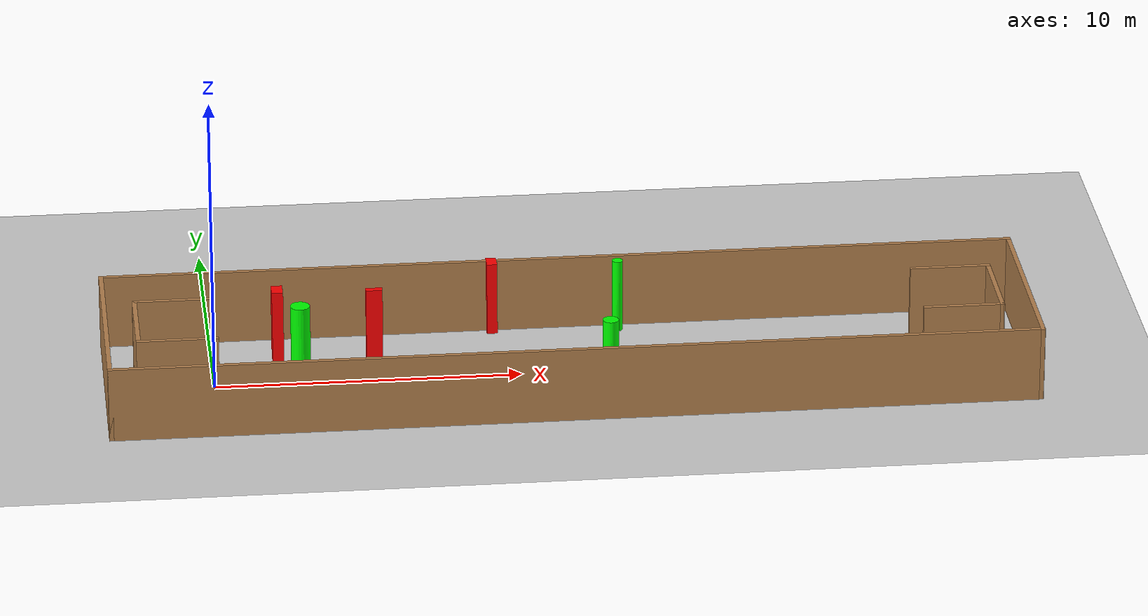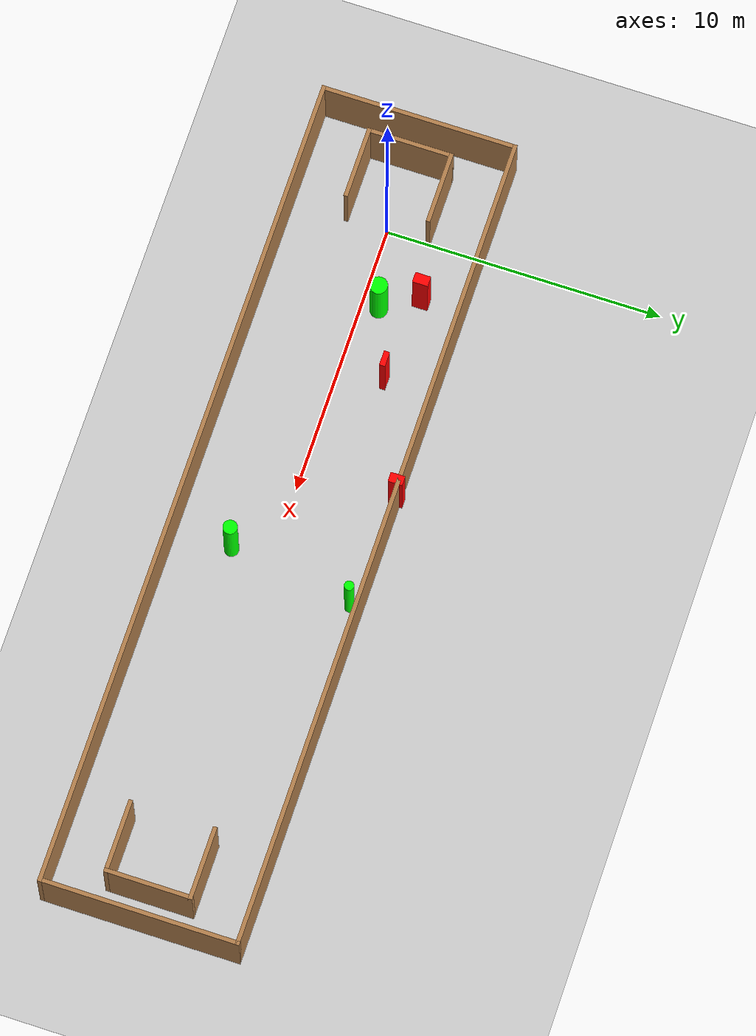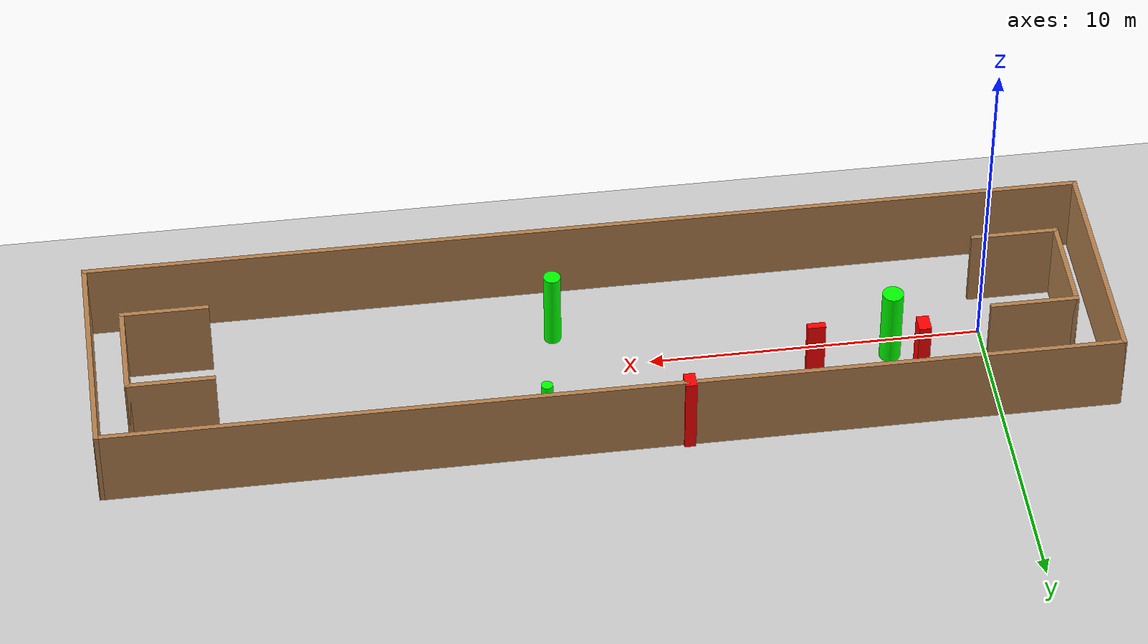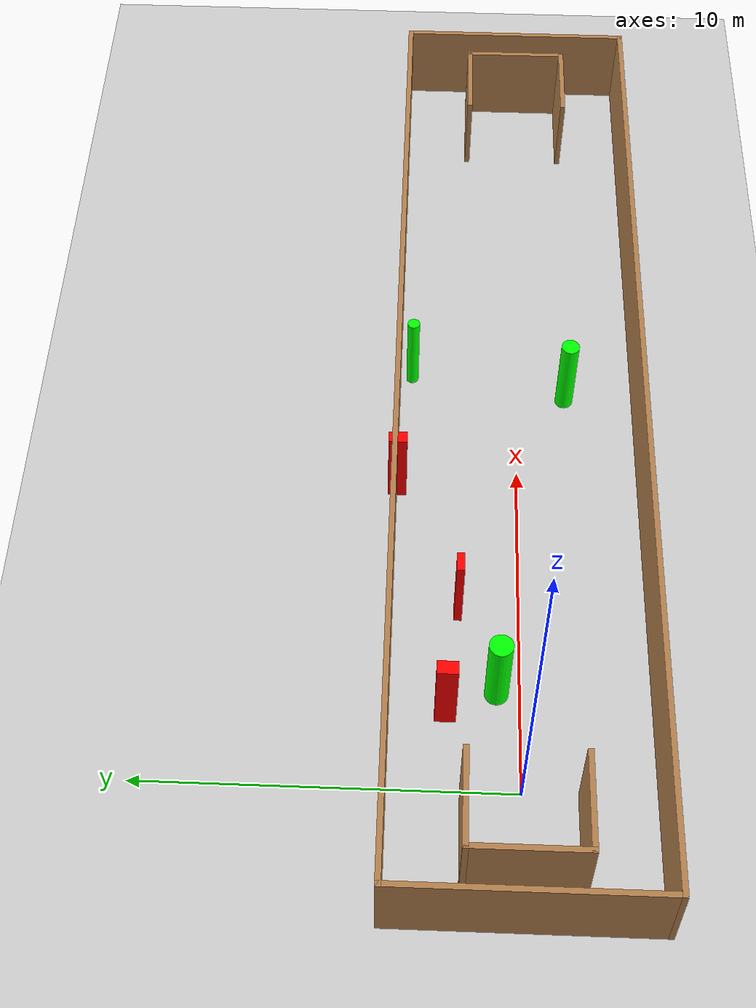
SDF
<sdf version="1.7">
 <world name="default">
  <light name="sun" type="directional">
   <pose>0 0 10 0 -0 0</pose>
   <diffuse>0.8 0.8 0.8 1</diffuse>
   <specular>0.2 0.2 0.2 1</specular>
   <attenuation>
    <range>1000</range>
    <constant>0.9</constant>
    <linear>0.01</linear>
    <quadratic>0.001</quadratic>
   </attenuation>
   <direction>-0.5 0.1 -0.9</direction>
   <spot><inner_angle>0</inner_angle><outer_angle>0</outer_angle><falloff>0</falloff></spot>
  </light>
  <model name="ground_plane">
   <static>1</static>
   <link name="link">
    <collision name="collision">
     <geometry><plane><normal>0 0 1</normal><size>100 100</size></plane></geometry>
     <surface>
      <contact><collide_bitmask>65535</collide_bitmask></contact>
      <friction><ode><mu>100</mu><mu2>50</mu2></ode></friction>
     </surface>
    </collision>
    <visual name="visual">
     <cast_shadows>0</cast_shadows>
     <geometry><plane><normal>0 0 1</normal><size>100 100</size></plane></geometry>
     <material>
      <script><uri>file://media/materials/scripts/gazebo.material</uri><name>Gazebo/Grey</name></script>
     </material>
    </visual>
   </link>
  </model>
  <gravity>0 0 -9.8</gravity>
  <magnetic_field>6e-06 2.3e-05 -4.2e-05</magnetic_field>
  <atmosphere type="adiabatic"/>
  <physics type="ode">
   <max_step_size>0.001</max_step_size>
   <real_time_factor>1</real_time_factor>
   <real_time_update_rate>1000</real_time_update_rate>
  </physics>
  <scene><ambient>0.4 0.4 0.4 1</ambient><background>0.7 0.7 0.7 1</background><shadows>1</shadows></scene>
  <spherical_coordinates>
   <surface_model>EARTH_WGS84</surface_model>
   <latitude_deg>0</latitude_deg>
   <longitude_deg>0</longitude_deg>
   <elevation>0</elevation>
   <heading_deg>0</heading_deg>
  </spherical_coordinates>
  <model name="my_base_walls">
   <link name="Wall_0">
    <collision name="Wall_0_Collision">
     <geometry><box><size>7.15 0.15 2.5</size></box></geometry>
     <pose>0 0 1.25 0 -0 0</pose>
    </collision>
    <visual name="Wall_0_Visual">
     <pose>0 0 1.25 0 -0 0</pose>
     <geometry><box><size>7.15 0.15 2.5</size></box></geometry>
     <material>
      <script><uri>file://media/materials/scripts/gazebo.material</uri><name>Gazebo/Wood</name></script>
      <ambient>1 1 1 1</ambient>
     </material>
     <meta><layer>0</layer></meta>
    </visual>
    <pose>-15 0 0 0 -0 1.5708</pose>
   </link>
   <link name="Wall_10">
    <collision name="Wall_10_Collision">
     <geometry><box><size>2.65 0.15 2.5</size></box></geometry>
     <pose>0 0 1.25 0 -0 0</pose>
    </collision>
    <visual name="Wall_10_Visual">
     <pose>0 0 1.25 0 -0 0</pose>
     <geometry><box><size>2.65 0.15 2.5</size></box></geometry>
     <material>
      <script><uri>file://media/materials/scripts/gazebo.material</uri><name>Gazebo/Wood</name></script>
      <ambient>1 1 1 1</ambient>
     </material>
     <meta><layer>0</layer></meta>
    </visual>
    <pose>-12.75 -1.5 0 0 -0 0</pose>
   </link>
   <link name="Wall_12">
    <collision name="Wall_12_Collision">
     <geometry><box><size>2.65 0.15 2.5</size></box></geometry>
     <pose>0 0 1.25 0 -0 0</pose>
    </collision>
    <visual name="Wall_12_Visual">
     <pose>0 0 1.25 0 -0 0</pose>
     <geometry><box><size>2.65 0.15 2.5</size></box></geometry>
     <material>
      <script><uri>file://media/materials/scripts/gazebo.material</uri><name>Gazebo/Wood</name></script>
      <ambient>1 1 1 1</ambient>
     </material>
     <meta><layer>0</layer></meta>
    </visual>
    <pose>-12.75 1.5 0 0 -0 0</pose>
   </link>
   <link name="Wall_14">
    <collision name="Wall_14_Collision">
     <geometry><box><size>3.15 0.15 2.5</size></box></geometry>
     <pose>0 0 1.25 0 -0 0</pose>
    </collision>
    <visual name="Wall_14_Visual">
     <pose>0 0 1.25 0 -0 0</pose>
     <geometry><box><size>3.15 0.15 2.5</size></box></geometry>
     <material>
      <script><uri>file://media/materials/scripts/gazebo.material</uri><name>Gazebo/Wood</name></script>
      <ambient>1 1 1 1</ambient>
     </material>
     <meta><layer>0</layer></meta>
    </visual>
    <pose>14 0 0 0 -0 -1.5708</pose>
   </link>
   <link name="Wall_15">
    <collision name="Wall_15_Collision">
     <geometry><box><size>2.65 0.15 2.5</size></box></geometry>
     <pose>0 0 1.25 0 -0 0</pose>
    </collision>
    <visual name="Wall_15_Visual">
     <pose>0 0 1.25 0 -0 0</pose>
     <geometry><box><size>2.65 0.15 2.5</size></box></geometry>
     <material>
      <script><uri>file://media/materials/scripts/gazebo.material</uri><name>Gazebo/Wood</name></script>
      <ambient>1 1 1 1</ambient>
     </material>
     <meta><layer>0</layer></meta>
    </visual>
    <pose>12.75 -1.5 0 0 -0 3.14159</pose>
   </link>
   <link name="Wall_17">
    <collision name="Wall_17_Collision">
     <geometry><box><size>2.65 0.15 2.5</size></box></geometry>
     <pose>0 0 1.25 0 -0 0</pose>
    </collision>
    <visual name="Wall_17_Visual">
     <pose>0 0 1.25 0 -0 0</pose>
     <geometry><box><size>2.65 0.15 2.5</size></box></geometry>
     <material>
      <script><uri>file://media/materials/scripts/gazebo.material</uri><name>Gazebo/Wood</name></script>
      <ambient>1 1 1 1</ambient>
     </material>
     <meta><layer>0</layer></meta>
    </visual>
    <pose>12.75 1.5 0 0 -0 3.14159</pose>
   </link>
   <link name="Wall_2">
    <collision name="Wall_2_Collision">
     <geometry><box><size>30.15 0.15 2.5</size></box></geometry>
     <pose>0 0 1.25 0 -0 0</pose>
    </collision>
    <visual name="Wall_2_Visual">
     <pose>0 0 1.25 0 -0 0</pose>
     <geometry><box><size>30.15 0.15 2.5</size></box></geometry>
     <material>
      <script><uri>file://media/materials/scripts/gazebo.material</uri><name>Gazebo/Wood</name></script>
      <ambient>1 1 1 1</ambient>
     </material>
     <meta><layer>0</layer></meta>
    </visual>
    <pose>-0 -3.5 0 0 -0 0</pose>
   </link>
   <link name="Wall_4">
    <collision name="Wall_4_Collision">
     <geometry><box><size>30.15 0.15 2.5</size></box></geometry>
     <pose>0 0 1.25 0 -0 0</pose>
    </collision>
    <visual name="Wall_4_Visual">
     <pose>0 0 1.25 0 -0 0</pose>
     <geometry><box><size>30.15 0.15 2.5</size></box></geometry>
     <material>
      <script><uri>file://media/materials/scripts/gazebo.material</uri><name>Gazebo/Wood</name></script>
      <ambient>1 1 1 1</ambient>
     </material>
     <meta><layer>0</layer></meta>
    </visual>
    <pose>-0 3.5 0 0 -0 0</pose>
   </link>
   <link name="Wall_6">
    <collision name="Wall_6_Collision">
     <geometry><box><size>7.15 0.15 2.5</size></box></geometry>
     <pose>0 0 1.25 0 -0 0</pose>
    </collision>
    <visual name="Wall_6_Visual">
     <pose>0 0 1.25 0 -0 0</pose>
     <geometry><box><size>7.15 0.15 2.5</size></box></geometry>
     <material>
      <script><uri>file://media/materials/scripts/gazebo.material</uri><name>Gazebo/Wood</name></script>
      <ambient>1 1 1 1</ambient>
     </material>
     <meta><layer>0</layer></meta>
    </visual>
    <pose>15 0 0 0 -0 -1.5708</pose>
   </link>
   <link name="Wall_9">
    <collision name="Wall_9_Collision">
     <geometry><box><size>3.15 0.15 2.5</size></box></geometry>
     <pose>0 0 1.25 0 -0 0</pose>
    </collision>
    <visual name="Wall_9_Visual">
     <pose>0 0 1.25 0 -0 0</pose>
     <geometry><box><size>3.15 0.15 2.5</size></box></geometry>
     <material>
      <script><uri>file://media/materials/scripts/gazebo.material</uri><name>Gazebo/Wood</name></script>
      <ambient>1 1 1 1</ambient>
     </material>
     <meta><layer>0</layer></meta>
    </visual>
    <pose>-14 0 0 0 -0 -1.5708</pose>
   </link>
   <static>1</static>
   <pose>11.5 0 0 0 -0 0</pose>
  </model>
  <model name="cylinder1">
   <static>1</static>
   <link name="link">
    <inertial>
     <mass>1</mass>
     <inertia><ixx>0.5</ixx><ixy>0</ixy><ixz>0</ixz><iyy>0.5</iyy><iyz>0</iyz><izz>1</izz></inertia>
    </inertial>
    <collision name="collision">
     <geometry><cylinder><radius>0.3194504481139195</radius><length>2.5</length></cylinder></geometry>
    </collision>
    <visual name="visual">
     <geometry><cylinder><radius>0.3194504481139195</radius><length>2.5</length></cylinder></geometry>
     <material>
      <ambient>0 1 0 1</ambient>
      <diffuse>0 1 0 1</diffuse>
      <specular>0.1 0.1 0.1 1</specular>
      <emissive>0 0 0 0</emissive>
     </material>
    </visual>
   </link>
   <pose>2.833525410050683 0.6244083393678608 1.25 0 0 0</pose>
  </model>
  <model name="cylinder2">
   <static>1</static>
   <link name="link">
    <inertial>
     <mass>1</mass>
     <inertia><ixx>0.5</ixx><ixy>0</ixy><ixz>0</ixz><iyy>0.5</iyy><iyz>0</iyz><izz>1</izz></inertia>
    </inertial>
    <collision name="collision">
     <geometry><cylinder><radius>0.25748862822398</radius><length>2.5</length></cylinder></geometry>
    </collision>
    <visual name="visual">
     <geometry><cylinder><radius>0.25748862822398</radius><length>2.5</length></cylinder></geometry>
     <material>
      <ambient>0 1 0 1</ambient>
      <diffuse>0 1 0 1</diffuse>
      <specular>0.1 0.1 0.1 1</specular>
      <emissive>0 0 0 0</emissive>
     </material>
    </visual>
   </link>
   <pose>12.740377015647553 -1.4238383121048432 1.25 0 0 0</pose>
  </model>
  <model name="cylinder3">
   <static>1</static>
   <link name="link">
    <inertial>
     <mass>1</mass>
     <inertia><ixx>0.5</ixx><ixy>0</ixy><ixz>0</ixz><iyy>0.5</iyy><iyz>0</iyz><izz>1</izz></inertia>
    </inertial>
    <collision name="collision">
     <geometry><cylinder><radius>0.17455435943086636</radius><length>2.5</length></cylinder></geometry>
    </collision>
    <visual name="visual">
     <geometry><cylinder><radius>0.17455435943086636</radius><length>2.5</length></cylinder></geometry>
     <material>
      <ambient>0 1 0 1</ambient>
      <diffuse>0 1 0 1</diffuse>
      <specular>0.1 0.1 0.1 1</specular>
      <emissive>0 0 0 0</emissive>
     </material>
    </visual>
   </link>
   <pose>13.449218014546247 3.0852178708128886 1.25 0 0 0</pose>
  </model>
  <model name="box1">
   <static>1</static>
   <link name="link">
    <inertial>
     <mass>1</mass>
     <inertia><ixx>0.083</ixx><ixy>0</ixy><ixz>0</ixz><iyy>0.083</iyy><iyz>0</iyz><izz>0.083</izz></inertia>
    </inertial>
    <collision name="collision">
     <geometry><box><size>0.5412082685061654 0.20842692218071188 2.5</size></box></geometry>
    </collision>
    <visual name="visual">
     <geometry><box><size>0.5412082685061654 0.20842692218071188 2.5</size></box></geometry>
     <material>
      <ambient>1 0 0 1</ambient>
      <diffuse>1 0 0 1</diffuse>
      <specular>0.1 0.1 0.1 1</specular>
      <emissive>0 0 0 0</emissive>
     </material>
    </visual>
    <sensor name="my_contact" type="contact">
     <contact><collision>box_collision</collision><topic>__default_topic__</topic></contact>
    </sensor>
   </link>
   <pose>5.309360761959249 1.6556725734345088 1.25 0 0 0</pose>
  </model>
  <model name="box2">
   <static>1</static>
   <link name="link">
    <inertial>
     <mass>1</mass>
     <inertia><ixx>0.083</ixx><ixy>0</ixy><ixz>0</ixz><iyy>0.083</iyy><iyz>0</iyz><izz>0.083</izz></inertia>
    </inertial>
    <collision name="collision">
     <geometry><box><size>0.36956012490497203 0.5584069024907432 2.5</size></box></geometry>
    </collision>
    <visual name="visual">
     <geometry><box><size>0.36956012490497203 0.5584069024907432 2.5</size></box></geometry>
     <material>
      <ambient>1 0 0 1</ambient>
      <diffuse>1 0 0 1</diffuse>
      <specular>0.1 0.1 0.1 1</specular>
      <emissive>0 0 0 0</emissive>
     </material>
    </visual>
    <sensor name="my_contact" type="contact">
     <contact><collision>box_collision</collision><topic>__default_topic__</topic></contact>
    </sensor>
   </link>
   <pose>2.1614787880021815 1.9596446119711715 1.25 0 0 0</pose>
  </model>
  <model name="box3">
   <static>1</static>
   <link name="link">
    <inertial>
     <mass>1</mass>
     <inertia><ixx>0.083</ixx><ixy>0</ixy><ixz>0</ixz><iyy>0.083</iyy><iyz>0</iyz><izz>0.083</izz></inertia>
    </inertial>
    <collision name="collision">
     <geometry><box><size>0.34304128674143275 0.515769544226035 2.5</size></box></geometry>
    </collision>
    <visual name="visual">
     <geometry><box><size>0.34304128674143275 0.515769544226035 2.5</size></box></geometry>
     <material>
      <ambient>1 0 0 1</ambient>
      <diffuse>1 0 0 1</diffuse>
      <specular>0.1 0.1 0.1 1</specular>
      <emissive>0 0 0 0</emissive>
     </material>
    </visual>
    <sensor name="my_contact" type="contact">
     <contact><collision>box_collision</collision><topic>__default_topic__</topic></contact>
    </sensor>
   </link>
   <pose>9.311175096604364 3.41519836271081 1.25 0 0 0</pose>
  </model>
 </world>
</sdf>
